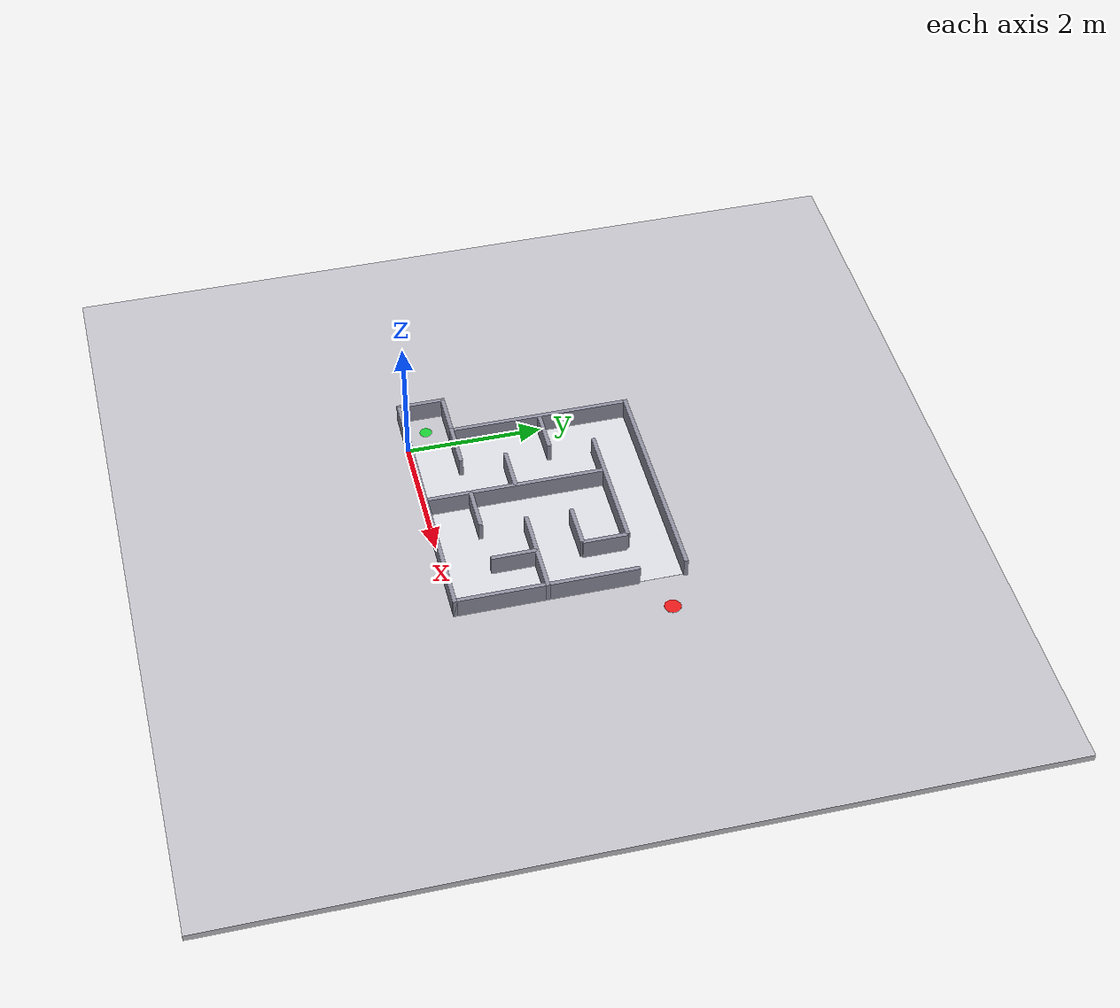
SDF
<?xml version="1.0" ?>
<!--
  迷宫仿真场景（由 gen_maze_world.py 自动生成，请勿手工修改）
  规模：5 x 5 格，格距 0.66 m（通道 0.60 m + 墙厚 0.06 m）
  外框：x ∈ [0, 3.30]，y ∈ [0, 3.30]
  入口：西墙第 0 行（y ≈ 0.33）
  出口：东墙
-->
<sdf version="1.6">
  <world name="maze_world">

    <!-- 物理引擎：步长 1 ms，保证 0.16 m/s 低速下碰撞检测稳定 -->
    <physics type="ode">
      <max_step_size>0.001</max_step_size>
      <real_time_update_rate>1000</real_time_update_rate>
      <ode>
        <solver>
          <type>quick</type>
          <iters>50</iters>
        </solver>
      </ode>
    </physics>

    <scene>
      <ambient>0.55 0.55 0.6 1</ambient>
      <background>0.25 0.25 0.30 1</background>
      <shadows>1</shadows>
    </scene>

    <!-- 光照：内嵌平行光，不依赖 Gazebo 在线模型库（离线也能跑） -->
    <light type="directional" name="sun">
      <cast_shadows>true</cast_shadows>
      <pose>0 0 10 0 0 0</pose>
      <diffuse>0.9 0.9 0.9 1</diffuse>
      <specular>0.15 0.15 0.15 1</specular>
      <attenuation>
        <range>1000</range>
        <constant>0.9</constant>
        <linear>0.01</linear>
        <quadratic>0.001</quadratic>
      </attenuation>
      <direction>-0.5 0.35 -0.9</direction>
    </light>

    <!-- 地面：一个大盒子，上表面正好在 z = 0 -->
    <model name="ground">
      <static>true</static>
      <pose>1.6500 1.6500 -0.05 0 0 0</pose>
      <link name="link">
        <collision name="collision">
          <geometry><box><size>12 12 0.1</size></box></geometry>
          <surface>
              <friction>
                <ode>
                  <mu>1.0</mu>
                  <mu2>1.0</mu2>
                </ode>
              </friction>
              <contact>
                <ode>
                  <kp>1000000.0</kp>
                  <kd>100.0</kd>
                  <max_vel>0.01</max_vel>
                  <min_depth>0.001</min_depth>
                </ode>
              </contact>
            </surface>
        </collision>
        <visual name="visual">
          <geometry><box><size>12 12 0.1</size></box></geometry>
          <material>
            <ambient>0.75 0.75 0.78 1</ambient>
            <diffuse>0.75 0.75 0.78 1</diffuse>
          </material>
        </visual>
      </link>
    </model>

    <!-- ===== 迷宫地面色块（仅视觉，无碰撞，抬高 1 mm 避免与地面闪烁） ===== -->
    <model name="maze_floor">
      <static>true</static>
      <pose>1.6500 1.6500 0.001 0 0 0</pose>
      <link name="link">
        <visual name="visual">
          <geometry><box><size>3.3000 3.3000 0.002</size></box></geometry>
          <material>
            <ambient>0.85 0.85 0.88 1</ambient>
            <diffuse>0.85 0.85 0.88 1</diffuse>
          </material>
        </visual>
      </link>
    </model>

    <!-- Gazebo ROS 状态插件：提供 /gazebo/model_states 与 /get_entity_state 服务，
         用来在调试时读取机器人的"真实世界位姿"，和里程计读数做对照。
         报告里"里程计标定/误差分析"那一节就靠它。 -->
    <plugin name="gazebo_ros_state" filename="libgazebo_ros_state.so">
      <ros>
        <namespace>/</namespace>
      </ros>
      <update_rate>30.0</update_rate>
    </plugin>

    <!-- ===== 迷宫墙体 ===== -->
    <model name="wall_000">
      <static>true</static>
      <pose>0.0000 1.9950 0.1500 0 0 0</pose>
      <link name="link">
        <collision name="collision">
          <geometry><box><size>0.0600 2.6700 0.3000</size></box></geometry>
          <surface>
              <friction>
                <ode>
                  <mu>1.0</mu>
                  <mu2>1.0</mu2>
                </ode>
              </friction>
              <contact>
                <ode>
                  <kp>1000000.0</kp>
                  <kd>100.0</kd>
                  <max_vel>0.01</max_vel>
                  <min_depth>0.001</min_depth>
                </ode>
              </contact>
            </surface>
        </collision>
        <visual name="visual">
          <geometry><box><size>0.0600 2.6700 0.3000</size></box></geometry>
          <material>
              <ambient>0.45 0.45 0.52 1</ambient>
              <diffuse>0.55 0.55 0.62 1</diffuse>
              <specular>0.1 0.1 0.1 1</specular>
            </material>
        </visual>
      </link>
    </model>
    <model name="wall_001">
      <static>true</static>
      <pose>1.3200 1.3050 0.1500 0 0 0</pose>
      <link name="link">
        <collision name="collision">
          <geometry><box><size>0.0600 2.6700 0.3000</size></box></geometry>
          <surface>
              <friction>
                <ode>
                  <mu>1.0</mu>
                  <mu2>1.0</mu2>
                </ode>
              </friction>
              <contact>
                <ode>
                  <kp>1000000.0</kp>
                  <kd>100.0</kd>
                  <max_vel>0.01</max_vel>
                  <min_depth>0.001</min_depth>
                </ode>
              </contact>
            </surface>
        </collision>
        <visual name="visual">
          <geometry><box><size>0.0600 2.6700 0.3000</size></box></geometry>
          <material>
              <ambient>0.45 0.45 0.52 1</ambient>
              <diffuse>0.55 0.55 0.62 1</diffuse>
              <specular>0.1 0.1 0.1 1</specular>
            </material>
        </visual>
      </link>
    </model>
    <model name="wall_002">
      <static>true</static>
      <pose>2.6400 0.9900 0.1500 0 0 0</pose>
      <link name="link">
        <collision name="collision">
          <geometry><box><size>0.0600 0.6600 0.3000</size></box></geometry>
          <surface>
              <friction>
                <ode>
                  <mu>1.0</mu>
                  <mu2>1.0</mu2>
                </ode>
              </friction>
              <contact>
                <ode>
                  <kp>1000000.0</kp>
                  <kd>100.0</kd>
                  <max_vel>0.01</max_vel>
                  <min_depth>0.001</min_depth>
                </ode>
              </contact>
            </surface>
        </collision>
        <visual name="visual">
          <geometry><box><size>0.0600 0.6600 0.3000</size></box></geometry>
          <material>
              <ambient>0.45 0.45 0.52 1</ambient>
              <diffuse>0.55 0.55 0.62 1</diffuse>
              <specular>0.1 0.1 0.1 1</specular>
            </material>
        </visual>
      </link>
    </model>
    <model name="wall_003">
      <static>true</static>
      <pose>2.6400 2.3100 0.1500 0 0 0</pose>
      <link name="link">
        <collision name="collision">
          <geometry><box><size>0.0600 0.6600 0.3000</size></box></geometry>
          <surface>
              <friction>
                <ode>
                  <mu>1.0</mu>
                  <mu2>1.0</mu2>
                </ode>
              </friction>
              <contact>
                <ode>
                  <kp>1000000.0</kp>
                  <kd>100.0</kd>
                  <max_vel>0.01</max_vel>
                  <min_depth>0.001</min_depth>
                </ode>
              </contact>
            </surface>
        </collision>
        <visual name="visual">
          <geometry><box><size>0.0600 0.6600 0.3000</size></box></geometry>
          <material>
              <ambient>0.45 0.45 0.52 1</ambient>
              <diffuse>0.55 0.55 0.62 1</diffuse>
              <specular>0.1 0.1 0.1 1</specular>
            </material>
        </visual>
      </link>
    </model>
    <model name="wall_004">
      <static>true</static>
      <pose>3.3000 1.3050 0.1500 0 0 0</pose>
      <link name="link">
        <collision name="collision">
          <geometry><box><size>0.0600 2.6700 0.3000</size></box></geometry>
          <surface>
              <friction>
                <ode>
                  <mu>1.0</mu>
                  <mu2>1.0</mu2>
                </ode>
              </friction>
              <contact>
                <ode>
                  <kp>1000000.0</kp>
                  <kd>100.0</kd>
                  <max_vel>0.01</max_vel>
                  <min_depth>0.001</min_depth>
                </ode>
              </contact>
            </surface>
        </collision>
        <visual name="visual">
          <geometry><box><size>0.0600 2.6700 0.3000</size></box></geometry>
          <material>
              <ambient>0.45 0.45 0.52 1</ambient>
              <diffuse>0.55 0.55 0.62 1</diffuse>
              <specular>0.1 0.1 0.1 1</specular>
            </material>
        </visual>
      </link>
    </model>
    <model name="wall_005">
      <static>true</static>
      <pose>1.6500 0.0000 0.1500 0 0 0</pose>
      <link name="link">
        <collision name="collision">
          <geometry><box><size>3.3600 0.0600 0.3000</size></box></geometry>
          <surface>
              <friction>
                <ode>
                  <mu>1.0</mu>
                  <mu2>1.0</mu2>
                </ode>
              </friction>
              <contact>
                <ode>
                  <kp>1000000.0</kp>
                  <kd>100.0</kd>
                  <max_vel>0.01</max_vel>
                  <min_depth>0.001</min_depth>
                </ode>
              </contact>
            </surface>
        </collision>
        <visual name="visual">
          <geometry><box><size>3.3600 0.0600 0.3000</size></box></geometry>
          <material>
              <ambient>0.45 0.45 0.52 1</ambient>
              <diffuse>0.55 0.55 0.62 1</diffuse>
              <specular>0.1 0.1 0.1 1</specular>
            </material>
        </visual>
      </link>
    </model>
    <model name="wall_006">
      <static>true</static>
      <pose>0.3150 0.6600 0.1500 0 0 0</pose>
      <link name="link">
        <collision name="collision">
          <geometry><box><size>0.6900 0.0600 0.3000</size></box></geometry>
          <surface>
              <friction>
                <ode>
                  <mu>1.0</mu>
                  <mu2>1.0</mu2>
                </ode>
              </friction>
              <contact>
                <ode>
                  <kp>1000000.0</kp>
                  <kd>100.0</kd>
                  <max_vel>0.01</max_vel>
                  <min_depth>0.001</min_depth>
                </ode>
              </contact>
            </surface>
        </collision>
        <visual name="visual">
          <geometry><box><size>0.6900 0.0600 0.3000</size></box></geometry>
          <material>
              <ambient>0.45 0.45 0.52 1</ambient>
              <diffuse>0.55 0.55 0.62 1</diffuse>
              <specular>0.1 0.1 0.1 1</specular>
            </material>
        </visual>
      </link>
    </model>
    <model name="wall_007">
      <static>true</static>
      <pose>1.6500 0.6600 0.1500 0 0 0</pose>
      <link name="link">
        <collision name="collision">
          <geometry><box><size>0.6600 0.0600 0.3000</size></box></geometry>
          <surface>
              <friction>
                <ode>
                  <mu>1.0</mu>
                  <mu2>1.0</mu2>
                </ode>
              </friction>
              <contact>
                <ode>
                  <kp>1000000.0</kp>
                  <kd>100.0</kd>
                  <max_vel>0.01</max_vel>
                  <min_depth>0.001</min_depth>
                </ode>
              </contact>
            </surface>
        </collision>
        <visual name="visual">
          <geometry><box><size>0.6600 0.0600 0.3000</size></box></geometry>
          <material>
              <ambient>0.45 0.45 0.52 1</ambient>
              <diffuse>0.55 0.55 0.62 1</diffuse>
              <specular>0.1 0.1 0.1 1</specular>
            </material>
        </visual>
      </link>
    </model>
    <model name="wall_008">
      <static>true</static>
      <pose>0.9900 1.3200 0.1500 0 0 0</pose>
      <link name="link">
        <collision name="collision">
          <geometry><box><size>0.6600 0.0600 0.3000</size></box></geometry>
          <surface>
              <friction>
                <ode>
                  <mu>1.0</mu>
                  <mu2>1.0</mu2>
                </ode>
              </friction>
              <contact>
                <ode>
                  <kp>1000000.0</kp>
                  <kd>100.0</kd>
                  <max_vel>0.01</max_vel>
                  <min_depth>0.001</min_depth>
                </ode>
              </contact>
            </surface>
        </collision>
        <visual name="visual">
          <geometry><box><size>0.6600 0.0600 0.3000</size></box></geometry>
          <material>
              <ambient>0.45 0.45 0.52 1</ambient>
              <diffuse>0.55 0.55 0.62 1</diffuse>
              <specular>0.1 0.1 0.1 1</specular>
            </material>
        </visual>
      </link>
    </model>
    <model name="wall_009">
      <static>true</static>
      <pose>2.6550 1.3200 0.1500 0 0 0</pose>
      <link name="link">
        <collision name="collision">
          <geometry><box><size>1.3500 0.0600 0.3000</size></box></geometry>
          <surface>
              <friction>
                <ode>
                  <mu>1.0</mu>
                  <mu2>1.0</mu2>
                </ode>
              </friction>
              <contact>
                <ode>
                  <kp>1000000.0</kp>
                  <kd>100.0</kd>
                  <max_vel>0.01</max_vel>
                  <min_depth>0.001</min_depth>
                </ode>
              </contact>
            </surface>
        </collision>
        <visual name="visual">
          <geometry><box><size>1.3500 0.0600 0.3000</size></box></geometry>
          <material>
              <ambient>0.45 0.45 0.52 1</ambient>
              <diffuse>0.55 0.55 0.62 1</diffuse>
              <specular>0.1 0.1 0.1 1</specular>
            </material>
        </visual>
      </link>
    </model>
    <model name="wall_010">
      <static>true</static>
      <pose>0.3150 1.9800 0.1500 0 0 0</pose>
      <link name="link">
        <collision name="collision">
          <geometry><box><size>0.6900 0.0600 0.3000</size></box></geometry>
          <surface>
              <friction>
                <ode>
                  <mu>1.0</mu>
                  <mu2>1.0</mu2>
                </ode>
              </friction>
              <contact>
                <ode>
                  <kp>1000000.0</kp>
                  <kd>100.0</kd>
                  <max_vel>0.01</max_vel>
                  <min_depth>0.001</min_depth>
                </ode>
              </contact>
            </surface>
        </collision>
        <visual name="visual">
          <geometry><box><size>0.6900 0.0600 0.3000</size></box></geometry>
          <material>
              <ambient>0.45 0.45 0.52 1</ambient>
              <diffuse>0.55 0.55 0.62 1</diffuse>
              <specular>0.1 0.1 0.1 1</specular>
            </material>
        </visual>
      </link>
    </model>
    <model name="wall_011">
      <static>true</static>
      <pose>2.3100 1.9800 0.1500 0 0 0</pose>
      <link name="link">
        <collision name="collision">
          <geometry><box><size>0.6600 0.0600 0.3000</size></box></geometry>
          <surface>
              <friction>
                <ode>
                  <mu>1.0</mu>
                  <mu2>1.0</mu2>
                </ode>
              </friction>
              <contact>
                <ode>
                  <kp>1000000.0</kp>
                  <kd>100.0</kd>
                  <max_vel>0.01</max_vel>
                  <min_depth>0.001</min_depth>
                </ode>
              </contact>
            </surface>
        </collision>
        <visual name="visual">
          <geometry><box><size>0.6600 0.0600 0.3000</size></box></geometry>
          <material>
              <ambient>0.45 0.45 0.52 1</ambient>
              <diffuse>0.55 0.55 0.62 1</diffuse>
              <specular>0.1 0.1 0.1 1</specular>
            </material>
        </visual>
      </link>
    </model>
    <model name="wall_012">
      <static>true</static>
      <pose>1.6500 2.6400 0.1500 0 0 0</pose>
      <link name="link">
        <collision name="collision">
          <geometry><box><size>1.9800 0.0600 0.3000</size></box></geometry>
          <surface>
              <friction>
                <ode>
                  <mu>1.0</mu>
                  <mu2>1.0</mu2>
                </ode>
              </friction>
              <contact>
                <ode>
                  <kp>1000000.0</kp>
                  <kd>100.0</kd>
                  <max_vel>0.01</max_vel>
                  <min_depth>0.001</min_depth>
                </ode>
              </contact>
            </surface>
        </collision>
        <visual name="visual">
          <geometry><box><size>1.9800 0.0600 0.3000</size></box></geometry>
          <material>
              <ambient>0.45 0.45 0.52 1</ambient>
              <diffuse>0.55 0.55 0.62 1</diffuse>
              <specular>0.1 0.1 0.1 1</specular>
            </material>
        </visual>
      </link>
    </model>
    <model name="wall_013">
      <static>true</static>
      <pose>1.6500 3.3000 0.1500 0 0 0</pose>
      <link name="link">
        <collision name="collision">
          <geometry><box><size>3.3600 0.0600 0.3000</size></box></geometry>
          <surface>
              <friction>
                <ode>
                  <mu>1.0</mu>
                  <mu2>1.0</mu2>
                </ode>
              </friction>
              <contact>
                <ode>
                  <kp>1000000.0</kp>
                  <kd>100.0</kd>
                  <max_vel>0.01</max_vel>
                  <min_depth>0.001</min_depth>
                </ode>
              </contact>
            </surface>
        </collision>
        <visual name="visual">
          <geometry><box><size>3.3600 0.0600 0.3000</size></box></geometry>
          <material>
              <ambient>0.45 0.45 0.52 1</ambient>
              <diffuse>0.55 0.55 0.62 1</diffuse>
              <specular>0.1 0.1 0.1 1</specular>
            </material>
        </visual>
      </link>
    </model>
    <model name="wall_014">
      <static>true</static>
      <pose>-0.6600 0.3300 0.1500 0 0 0</pose>
      <link name="link">
        <collision name="collision">
          <geometry><box><size>0.0600 0.7200 0.3000</size></box></geometry>
          <surface>
              <friction>
                <ode>
                  <mu>1.0</mu>
                  <mu2>1.0</mu2>
                </ode>
              </friction>
              <contact>
                <ode>
                  <kp>1000000.0</kp>
                  <kd>100.0</kd>
                  <max_vel>0.01</max_vel>
                  <min_depth>0.001</min_depth>
                </ode>
              </contact>
            </surface>
        </collision>
        <visual name="visual">
          <geometry><box><size>0.0600 0.7200 0.3000</size></box></geometry>
          <material>
              <ambient>0.45 0.45 0.52 1</ambient>
              <diffuse>0.55 0.55 0.62 1</diffuse>
              <specular>0.1 0.1 0.1 1</specular>
            </material>
        </visual>
      </link>
    </model>
    <model name="wall_015">
      <static>true</static>
      <pose>-0.3300 0.6600 0.1500 0 0 0</pose>
      <link name="link">
        <collision name="collision">
          <geometry><box><size>0.6600 0.0600 0.3000</size></box></geometry>
          <surface>
              <friction>
                <ode>
                  <mu>1.0</mu>
                  <mu2>1.0</mu2>
                </ode>
              </friction>
              <contact>
                <ode>
                  <kp>1000000.0</kp>
                  <kd>100.0</kd>
                  <max_vel>0.01</max_vel>
                  <min_depth>0.001</min_depth>
                </ode>
              </contact>
            </surface>
        </collision>
        <visual name="visual">
          <geometry><box><size>0.6600 0.0600 0.3000</size></box></geometry>
          <material>
              <ambient>0.45 0.45 0.52 1</ambient>
              <diffuse>0.55 0.55 0.62 1</diffuse>
              <specular>0.1 0.1 0.1 1</specular>
            </material>
        </visual>
      </link>
    </model>
    <model name="wall_016">
      <static>true</static>
      <pose>-0.3300 0.0000 0.1500 0 0 0</pose>
      <link name="link">
        <collision name="collision">
          <geometry><box><size>0.6600 0.0600 0.3000</size></box></geometry>
          <surface>
              <friction>
                <ode>
                  <mu>1.0</mu>
                  <mu2>1.0</mu2>
                </ode>
              </friction>
              <contact>
                <ode>
                  <kp>1000000.0</kp>
                  <kd>100.0</kd>
                  <max_vel>0.01</max_vel>
                  <min_depth>0.001</min_depth>
                </ode>
              </contact>
            </surface>
        </collision>
        <visual name="visual">
          <geometry><box><size>0.6600 0.0600 0.3000</size></box></geometry>
          <material>
              <ambient>0.45 0.45 0.52 1</ambient>
              <diffuse>0.55 0.55 0.62 1</diffuse>
              <specular>0.1 0.1 0.1 1</specular>
            </material>
        </visual>
      </link>
    </model>

    <!-- ===== 起点 / 终点标记 ===== -->
    <model name="start_marker">
      <static>true</static>
      <pose>-0.3300 0.3300 0.0025 0 0 0</pose>
      <link name="link">
        <visual name="visual">
          <geometry><cylinder><radius>0.0900</radius><length>0.0030</length></cylinder></geometry>
          <material>
            <ambient>0.1 0.8 0.2 1</ambient>
            <diffuse>0.1 0.8 0.2 1</diffuse>
            <emissive>0.04000000000000001 0.32000000000000006 0.08000000000000002 1</emissive>
          </material>
        </visual>
      </link>
    </model>
    <model name="exit_marker">
      <static>true</static>
      <pose>3.8500 2.9700 0.0025 0 0 0</pose>
      <link name="link">
        <visual name="visual">
          <geometry><cylinder><radius>0.1200</radius><length>0.0030</length></cylinder></geometry>
          <material>
            <ambient>0.9 0.1 0.1 1</ambient>
            <diffuse>0.9 0.1 0.1 1</diffuse>
            <emissive>0.36000000000000004 0.04000000000000001 0.04000000000000001 1</emissive>
          </material>
        </visual>
      </link>
    </model>

    <gui fullscreen="0">
      <camera name="user_camera">
        <pose>1.65 -1.25 3.10 0 0.66 1.5708</pose>
      </camera>
    </gui>

  </world>
</sdf>
